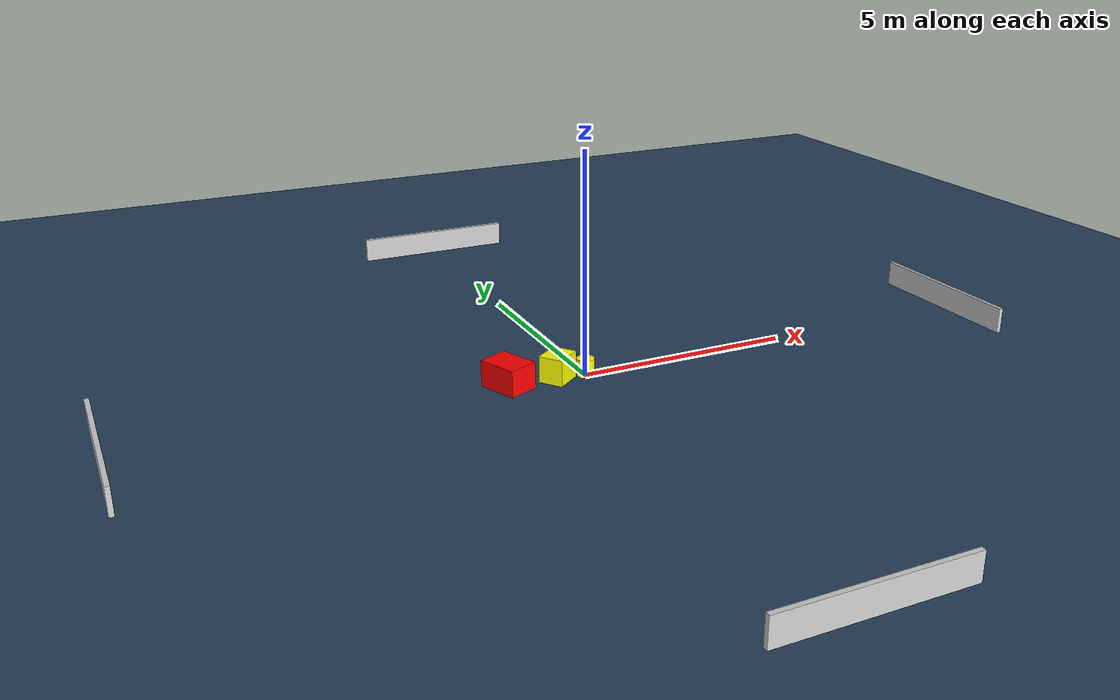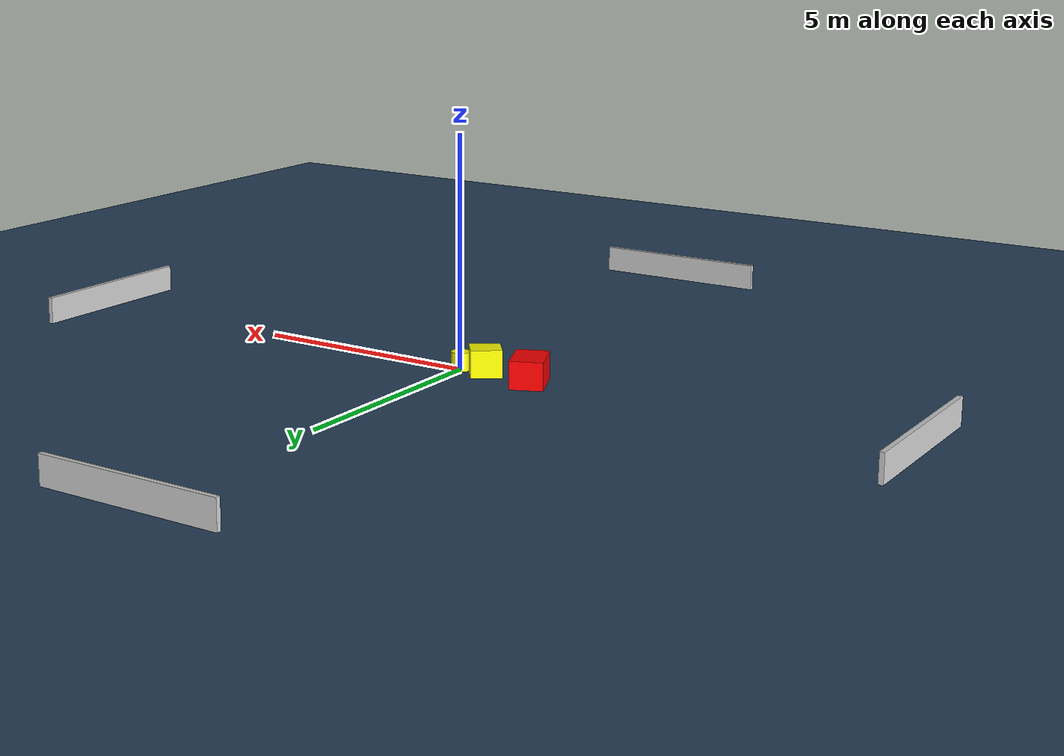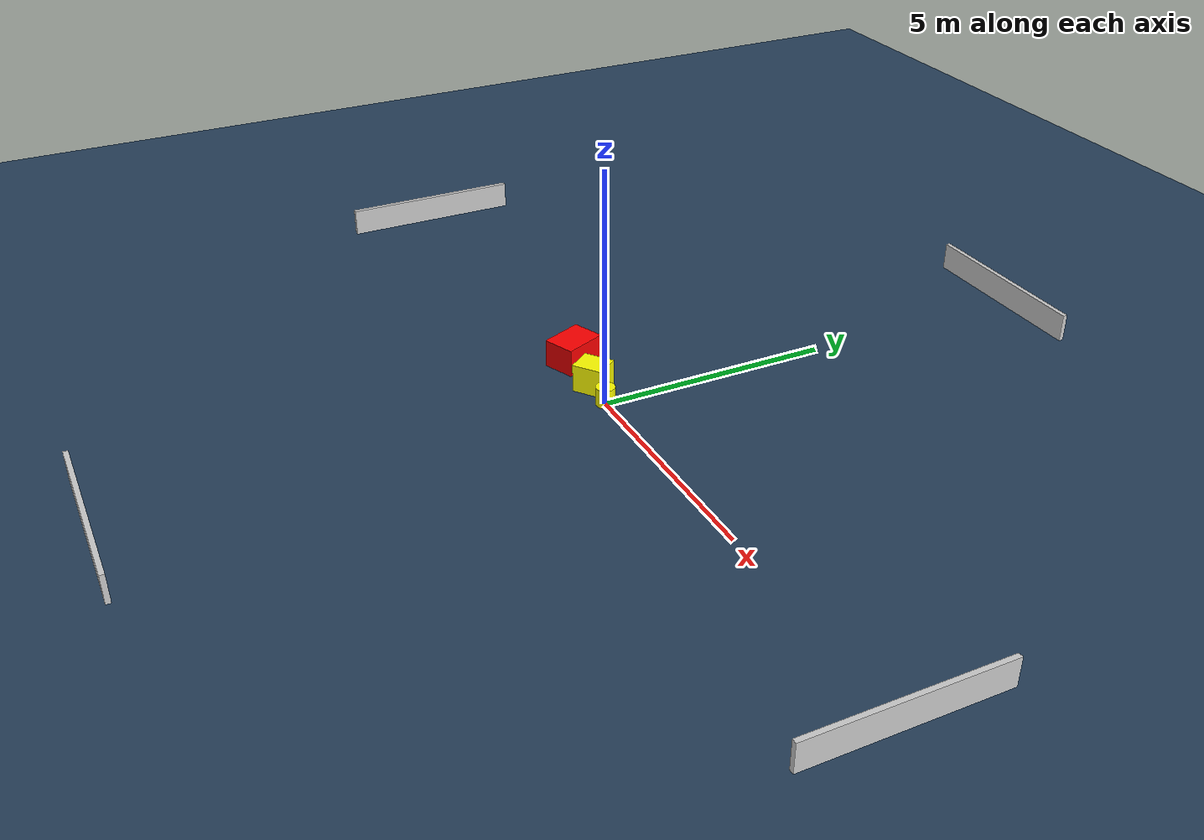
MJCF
<?xml version="1.0" ?>
<mujoco model="generated_environment">
  <option timestep="0.01" integrator="RK4" cone="elliptic"/>
  <default>
    <geom density="1"/>
  </default>
  <asset>
    <texture builtin="gradient" height="3072" name="skybox" rgb1="0.3 0.5 0.7" rgb2="0 0 0" type="skybox" width="512"/>
    <texture builtin="checker" height="300" name="groundplane" rgb1="0.2 0.3 0.4" rgb2="0.1 0.2 0.3" type="2d" width="300"/>
    <material name="groundplane" reflectance="0.2" texrepeat="5 5" texture="groundplane"/>
  </asset>
  <worldbody>
    <light dir="0 0 -1" directional="true" pos="0 0 1.5"/>
    <geom condim="3" friction="0.5 0.005 0.001" material="groundplane" name="floor" pos="0 0 0" size="0 0 0.05" type="plane"/>
    <body name="walls">
      <geom name="wall_1" condim="4" pos="-10.0 0.0 0.3" rgba="0.800000011920929 0.800000011920929 0.800000011920929 1.0" size="0.05 2.0 0.3" type="box"/>
      <geom name="wall_2" condim="4" pos="10.0 0.0 0.3" rgba="0.800000011920929 0.800000011920929 0.800000011920929 1.0" size="0.05 2.0 0.3" type="box"/>
      <geom name="wall_3" condim="4" pos="0.0 -10.0 0.3" rgba="0.800000011920929 0.800000011920929 0.800000011920929 1.0" size="2.0 0.05 0.3" type="box"/>
      <geom name="wall_4" condim="4" pos="0.0 10.0 0.3" rgba="0.800000011920929 0.800000011920929 0.800000011920929 1.0" size="2.0 0.05 0.3" type="box"/>
    </body>
    <body name="robot">
      <joint name="joint_x" type="slide" pos="0 0 0" axis="1 0 0"/>
      <joint name="joint_y" type="slide" pos="0 0 0" axis="0 1 0"/>
      <geom name="robot" type="cylinder" pos="0.0 0.0 0.2" size="0.2 0.2 0.0" mass="5.0" friction="1.0 0.005 0.0001" condim="4" rgba="1.0 1.0 0.0 1.0"/>
    </body>
    <body name="obstacle_1_movable">
      <geom name="obstacle_1_movable" condim="4" pos="-0.6461242912374012 0.04653535896870755 0.3" euler="0 0 306.80730023616775" friction="0.0 0.005 0.001" rgba="1.0 1.0 0.0 1.0" size="0.2794083482575762 0.33073909965503334 0.3" type="box" mass="0.1"/>
      <joint type="free"/>
    </body>
    <body name="obstacle_2_static">
      <geom name="obstacle_2_static" condim="4" pos="-1.7678407041396191 0.12759157604191737 0.3" euler="0 0 112.74285236570148" friction="0.0 0.005 0.001" rgba="1.0 0.0 0.0 1.0" size="0.46882184909335944 0.3521589716907228 0.3" type="box"/>
    </body>
  </worldbody>
  <actuator>
    <motor name="actuator_x" joint="joint_x" gear="1" ctrlrange="-1 1"/>
    <motor name="actuator_y" joint="joint_y" gear="1" ctrlrange="-1 1"/>
  </actuator>
</mujoco>
